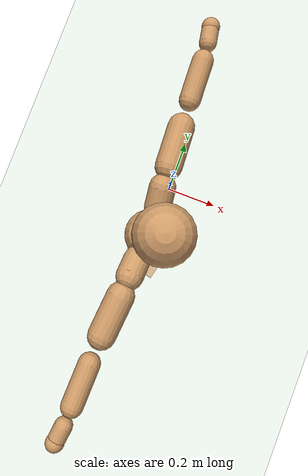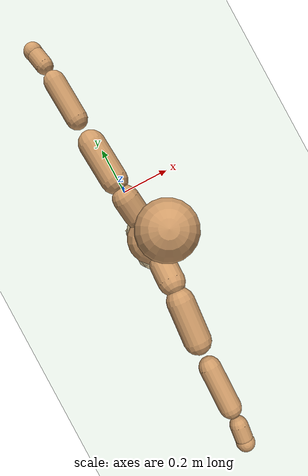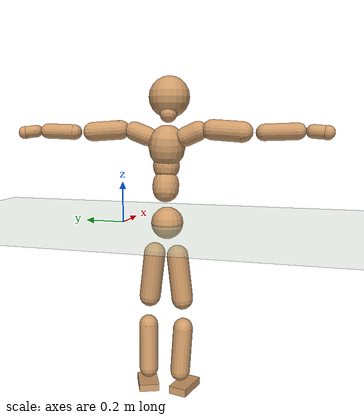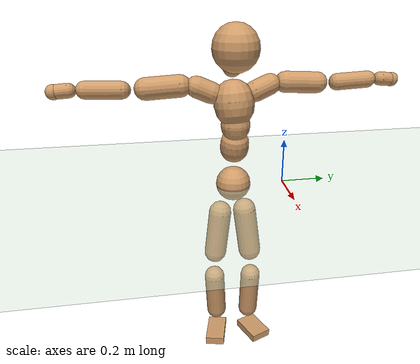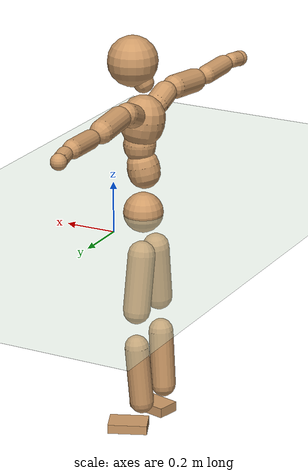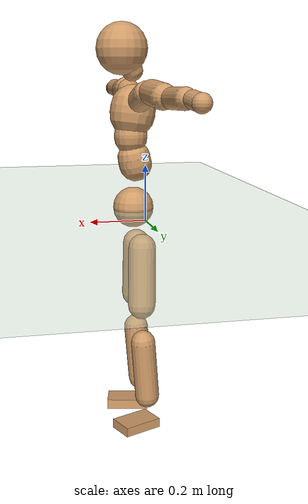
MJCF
<mujoco model="humanoid">
  <compiler coordinate="local" angle="radian"/>
  <default>
    <joint damping="0.0" armature="0.01" stiffness="0.0" limited="true"/>
    <geom conaffinity="1" condim="3" contype="7" margin="0.001" rgba="0.8 0.6 .4 1"/>
  </default>
  <asset>
    <texture type="skybox" builtin="gradient" rgb1=".4 .5 .6" rgb2="0 0 0" width="100" height="100"/>
    <texture builtin="flat" height="1278" mark="cross" markrgb="1 1 1" name="texgeom" random="0.01" rgb1="0.8 0.6 0.4" rgb2="0.8 0.6 0.4" type="cube" width="127"/>
    <texture builtin="checker" height="100" name="texplane" rgb1="0 0 0" rgb2="0.8 0.8 0.8" type="2d" width="100"/>
    <material name="MatPlane" reflectance="0.5" shininess="1" specular="1" texrepeat="60 60" texture="texplane"/>
    <material name="geom" texture="texgeom" texuniform="true"/>
  </asset>
  <worldbody>
    <light cutoff="100" diffuse="1 1 1" dir="-0 0 -1.3" directional="true" exponent="1" pos="0 0 1.3" specular=".1 .1 .1"/>
    <geom conaffinity="1" condim="3" name="floor" pos="0 0 0" rgba="0.8 0.9 0.8 1" size="100 100 .2" type="plane" material="MatPlane"/>
    <body name="Pelvis" pos="-0.0021 -0.2314 0.006">
      <freejoint name="Pelvis"/>
      <geom type="sphere" contype="1" conaffinity="1" density="500" size="0.0788" pos="0.0000 0.0000 0.0000" name="Pelvis"/>
      <body name="L_Hip" pos="-0.0255 0.0485 -0.0764">
        <joint name="L_Hip_x" type="hinge" pos="0 0 0" axis="1 0 0" stiffness="800" damping="80" armature="0.02" range="-180.0000 180.0000"/>
        <joint name="L_Hip_y" type="hinge" pos="0 0 0" axis="0 1 0" stiffness="800" damping="80" armature="0.02" range="-180.0000 180.0000"/>
        <joint name="L_Hip_z" type="hinge" pos="0 0 0" axis="0 0 1" stiffness="800" damping="80" armature="0.02" range="-180.0000 180.0000"/>
        <geom type="capsule" contype="1" conaffinity="1" density="500" fromto="0.0024 0.0093 -0.0752 0.0096 0.0371 -0.3007" size="0.0534" name="L_Hip"/>
        <body name="L_Knee" pos="0.0119 0.0464 -0.3758">
          <joint name="L_Knee_x" type="hinge" pos="0 0 0" axis="1 0 0" stiffness="800" damping="80" armature="0.02" range="-180.0000 180.0000"/>
          <joint name="L_Knee_y" type="hinge" pos="0 0 0" axis="0 1 0" stiffness="800" damping="80" armature="0.02" range="-180.0000 180.0000"/>
          <joint name="L_Knee_z" type="hinge" pos="0 0 0" axis="0 0 1" stiffness="800" damping="80" armature="0.02" range="-180.0000 180.0000"/>
          <geom type="capsule" contype="1" conaffinity="1" density="500" fromto="-0.0061 -0.0020 -0.0768 -0.0246 -0.0082 -0.3072" size="0.0479" name="L_Knee"/>
          <body name="L_Ankle" pos="-0.0307 -0.0102 -0.384">
            <joint name="L_Ankle_x" type="hinge" pos="0 0 0" axis="1 0 0" stiffness="800" damping="80" armature="0.02" range="-180.0000 180.0000"/>
            <joint name="L_Ankle_y" type="hinge" pos="0 0 0" axis="0 1 0" stiffness="800" damping="80" armature="0.02" range="-180.0000 180.0000"/>
            <joint name="L_Ankle_z" type="hinge" pos="0 0 0" axis="0 0 1" stiffness="800" damping="80" armature="0.02" range="-180.0000 180.0000"/>
            <geom type="box" contype="1" conaffinity="1" density="500" pos="0.0552 0.0234 -0.0281" size="0.0777 0.0511 0.0182" quat="0.9800 0.0000 0.0000 0.1988" name="L_Ankle"/>
            <body name="L_Toe" pos="0.1104 0.0467 -0.0563">
              <joint name="L_Toe_x" type="hinge" pos="0 0 0" axis="1 0 0" stiffness="500" damping="50" armature="0.02" range="-180.0000 180.0000"/>
              <joint name="L_Toe_y" type="hinge" pos="0 0 0" axis="0 1 0" stiffness="500" damping="50" armature="0.02" range="-180.0000 180.0000"/>
              <joint name="L_Toe_z" type="hinge" pos="0 0 0" axis="0 0 1" stiffness="500" damping="50" armature="0.02" range="-180.0000 180.0000"/>
              <geom type="box" contype="1" conaffinity="1" density="500" pos="0.0000 0.0000 0.0303" size="0.001 0.0025 0.001" quat="0.9792 0.0000 0.0000 0.2031" name="L_Toe"/>
            </body>
          </body>
        </body>
      </body>
      <body name="R_Hip" pos="-0.0237 -0.0501 -0.0835">
        <joint name="R_Hip_x" type="hinge" pos="0 0 0" axis="1 0 0" stiffness="800" damping="80" armature="0.02" range="-180.0000 180.0000"/>
        <joint name="R_Hip_y" type="hinge" pos="0 0 0" axis="0 1 0" stiffness="800" damping="80" armature="0.02" range="-180.0000 180.0000"/>
        <joint name="R_Hip_z" type="hinge" pos="0 0 0" axis="0 0 1" stiffness="800" damping="80" armature="0.02" range="-180.0000 180.0000"/>
        <geom type="capsule" contype="1" conaffinity="1" density="500" fromto="0.0001 -0.0089 -0.0733 0.0003 -0.0356 -0.2934" size="0.0526" name="R_Hip"/>
        <body name="R_Knee" pos="0.0004 -0.0445 -0.3667">
          <joint name="R_Knee_x" type="hinge" pos="0 0 0" axis="1 0 0" stiffness="800" damping="80" armature="0.02" range="-180.0000 180.0000"/>
          <joint name="R_Knee_y" type="hinge" pos="0 0 0" axis="0 1 0" stiffness="800" damping="80" armature="0.02" range="-180.0000 180.0000"/>
          <joint name="R_Knee_z" type="hinge" pos="0 0 0" axis="0 0 1" stiffness="800" damping="80" armature="0.02" range="-180.0000 180.0000"/>
          <geom type="capsule" contype="1" conaffinity="1" density="500" fromto="-0.0057 0.0032 -0.0755 -0.0227 0.0128 -0.3018" size="0.0488" name="R_Knee"/>
          <body name="R_Ankle" pos="-0.0284 0.016 -0.3773">
            <joint name="R_Ankle_x" type="hinge" pos="0 0 0" axis="1 0 0" stiffness="800" damping="80" armature="0.02" range="-180.0000 180.0000"/>
            <joint name="R_Ankle_y" type="hinge" pos="0 0 0" axis="0 1 0" stiffness="800" damping="80" armature="0.02" range="-180.0000 180.0000"/>
            <joint name="R_Ankle_z" type="hinge" pos="0 0 0" axis="0 0 1" stiffness="800" damping="80" armature="0.02" range="-180.0000 180.0000"/>
            <geom type="box" contype="1" conaffinity="1" density="500" pos="0.0596 -0.0139 -0.0294" size="0.0834 0.0463 0.0198" quat="0.9934 0.0000 0.0000 -0.1148" name="R_Ankle"/>
            <body name="R_Toe" pos="0.1191 -0.0279 -0.0589">
              <joint name="R_Toe_x" type="hinge" pos="0 0 0" axis="1 0 0" stiffness="500" damping="50" armature="0.02" range="-180.0000 180.0000"/>
              <joint name="R_Toe_y" type="hinge" pos="0 0 0" axis="0 1 0" stiffness="500" damping="50" armature="0.02" range="-180.0000 180.0000"/>
              <joint name="R_Toe_z" type="hinge" pos="0 0 0" axis="0 0 1" stiffness="500" damping="50" armature="0.02" range="-180.0000 180.0000"/>
              <geom type="box" contype="1" conaffinity="1" density="500" pos="0.0000 0.0000 0.0317" size="0.0009 0.0023 0.0011" quat="0.9945 0.0000 0.0000 -0.1051" name="R_Toe"/>
            </body>
          </body>
        </body>
      </body>
      <body name="Torso" pos="-0.0205 0.0036 0.1111">
        <joint name="Torso_x" type="hinge" pos="0 0 0" axis="1 0 0" stiffness="1000" damping="100" armature="0.02" range="-180.0000 180.0000"/>
        <joint name="Torso_y" type="hinge" pos="0 0 0" axis="0 1 0" stiffness="1000" damping="100" armature="0.02" range="-180.0000 180.0000"/>
        <joint name="Torso_z" type="hinge" pos="0 0 0" axis="0 0 1" stiffness="1000" damping="100" armature="0.02" range="-180.0000 180.0000"/>
        <geom type="capsule" contype="1" conaffinity="1" density="500" fromto="0.0187 0.0028 0.0832 0.0125 0.0019 0.0554" size="0.0634" name="Torso"/>
        <body name="Spine" pos="0.0311 0.0047 0.1386">
          <joint name="Spine_x" type="hinge" pos="0 0 0" axis="1 0 0" stiffness="1000" damping="100" armature="0.02" range="-180.0000 180.0000"/>
          <joint name="Spine_y" type="hinge" pos="0 0 0" axis="0 1 0" stiffness="1000" damping="100" armature="0.02" range="-180.0000 180.0000"/>
          <joint name="Spine_z" type="hinge" pos="0 0 0" axis="0 0 1" stiffness="1000" damping="100" armature="0.02" range="-180.0000 180.0000"/>
          <geom type="capsule" contype="1" conaffinity="1" density="500" fromto="0.0003 -0.0008 0.0334 0.0002 -0.0005 0.0223" size="0.0637" name="Spine"/>
          <body name="Chest" pos="0.0006 -0.0013 0.0557">
            <joint name="Chest_x" type="hinge" pos="0 0 0" axis="1 0 0" stiffness="1000" damping="100" armature="0.02" range="-180.0000 180.0000"/>
            <joint name="Chest_y" type="hinge" pos="0 0 0" axis="0 1 0" stiffness="1000" damping="100" armature="0.02" range="-180.0000 180.0000"/>
            <joint name="Chest_z" type="hinge" pos="0 0 0" axis="0 0 1" stiffness="1000" damping="100" armature="0.02" range="-180.0000 180.0000"/>
            <geom type="capsule" contype="1" conaffinity="1" density="500" fromto="-0.0115 -0.0055 0.0801 -0.0077 -0.0037 0.0534" size="0.0871" name="Chest"/>
            <body name="Neck" pos="-0.0204 -0.0139 0.1968">
              <joint name="Neck_x" type="hinge" pos="0 0 0" axis="1 0 0" stiffness="500" damping="50" armature="0.02" range="-180.0000 180.0000"/>
              <joint name="Neck_y" type="hinge" pos="0 0 0" axis="0 1 0" stiffness="500" damping="50" armature="0.02" range="-180.0000 180.0000"/>
              <joint name="Neck_z" type="hinge" pos="0 0 0" axis="0 0 1" stiffness="500" damping="50" armature="0.02" range="-180.0000 180.0000"/>
              <geom type="capsule" contype="1" conaffinity="1" density="500" fromto="0.0105 0.0019 0.0201 0.0420 0.0074 0.0804" size="0.041" name="Neck"/>
              <body name="Head" pos="0.0524 0.0093 0.1005">
                <joint name="Head_x" type="hinge" pos="0 0 0" axis="1 0 0" stiffness="500" damping="50" armature="0.02" range="-180.0000 180.0000"/>
                <joint name="Head_y" type="hinge" pos="0 0 0" axis="0 1 0" stiffness="500" damping="50" armature="0.02" range="-180.0000 180.0000"/>
                <joint name="Head_z" type="hinge" pos="0 0 0" axis="0 0 1" stiffness="500" damping="50" armature="0.02" range="-180.0000 180.0000"/>
                <geom type="sphere" contype="1" conaffinity="1" density="500" size="0.0985" pos="0.0000 0.0000 0.0000" name="Head"/>
              </body>
            </body>
            <body name="L_Thorax" pos="-0.0164 0.064 0.1022">
              <joint name="L_Thorax_x" type="hinge" pos="0 0 0" axis="1 0 0" stiffness="500" damping="50" armature="0.02" range="-180.0000 180.0000"/>
              <joint name="L_Thorax_y" type="hinge" pos="0 0 0" axis="0 1 0" stiffness="500" damping="50" armature="0.02" range="-180.0000 180.0000"/>
              <joint name="L_Thorax_z" type="hinge" pos="0 0 0" axis="0 0 1" stiffness="500" damping="50" armature="0.02" range="-180.0000 180.0000"/>
              <geom type="capsule" contype="1" conaffinity="1" density="500" fromto="-0.0026 0.0222 0.0088 -0.0103 0.0887 0.0354" size="0.0454" name="L_Thorax"/>
              <body name="L_Shoulder" pos="-0.0129 0.1109 0.0442">
                <joint name="L_Shoulder_x" type="hinge" pos="0 0 0" axis="1 0 0" stiffness="500" damping="50" armature="0.02" range="-720.0000 720.0000"/>
                <joint name="L_Shoulder_y" type="hinge" pos="0 0 0" axis="0 1 0" stiffness="500" damping="50" armature="0.02" range="-720.0000 720.0000"/>
                <joint name="L_Shoulder_z" type="hinge" pos="0 0 0" axis="0 0 1" stiffness="500" damping="50" armature="0.02" range="-720.0000 720.0000"/>
                <geom type="capsule" contype="1" conaffinity="1" density="500" fromto="-0.0026 0.0476 -0.0030 -0.0105 0.1903 -0.0121" size="0.0459" name="L_Shoulder"/>
                <body name="L_Elbow" pos="-0.0132 0.2379 -0.0152">
                  <joint name="L_Elbow_x" type="hinge" pos="0 0 0" axis="1 0 0" stiffness="500" damping="50" armature="0.02" range="-720.0000 720.0000"/>
                  <joint name="L_Elbow_y" type="hinge" pos="0 0 0" axis="0 1 0" stiffness="500" damping="50" armature="0.02" range="-720.0000 720.0000"/>
                  <joint name="L_Elbow_z" type="hinge" pos="0 0 0" axis="0 0 1" stiffness="500" damping="50" armature="0.02" range="-720.0000 720.0000"/>
                  <geom type="capsule" contype="1" conaffinity="1" density="500" fromto="-0.0021 0.0471 0.0017 -0.0083 0.1883 0.0068" size="0.0366" name="L_Elbow"/>
                  <body name="L_Wrist" pos="-0.0104 0.2354 0.0085">
                    <joint name="L_Wrist_x" type="hinge" pos="0 0 0" axis="1 0 0" stiffness="300" damping="30" armature="0.02" range="-180.0000 180.0000"/>
                    <joint name="L_Wrist_y" type="hinge" pos="0 0 0" axis="0 1 0" stiffness="300" damping="30" armature="0.02" range="-180.0000 180.0000"/>
                    <joint name="L_Wrist_z" type="hinge" pos="0 0 0" axis="0 0 1" stiffness="300" damping="30" armature="0.02" range="-180.0000 180.0000"/>
                    <geom type="capsule" contype="1" conaffinity="1" density="500" fromto="-0.0027 0.0152 -0.0019 -0.0108 0.0607 -0.0075" size="0.0298" name="L_Wrist"/>
                    <body name="L_Hand" pos="-0.0135 0.0758 -0.0094">
                      <joint name="L_Hand_x" type="hinge" pos="0 0 0" axis="1 0 0" stiffness="300" damping="30" armature="0.02" range="-180.0000 180.0000"/>
                      <joint name="L_Hand_y" type="hinge" pos="0 0 0" axis="0 1 0" stiffness="300" damping="30" armature="0.02" range="-180.0000 180.0000"/>
                      <joint name="L_Hand_z" type="hinge" pos="0 0 0" axis="0 0 1" stiffness="300" damping="30" armature="0.02" range="-180.0000 180.0000"/>
                      <geom type="sphere" contype="1" conaffinity="1" density="500" size="0.0312" pos="0.0000 0.0000 0.0000" name="L_Hand"/>
                    </body>
                  </body>
                </body>
              </body>
            </body>
            <body name="R_Thorax" pos="-0.0208 -0.0775 0.1017">
              <joint name="R_Thorax_x" type="hinge" pos="0 0 0" axis="1 0 0" stiffness="500" damping="50" armature="0.02" range="-180.0000 180.0000"/>
              <joint name="R_Thorax_y" type="hinge" pos="0 0 0" axis="0 1 0" stiffness="500" damping="50" armature="0.02" range="-180.0000 180.0000"/>
              <joint name="R_Thorax_z" type="hinge" pos="0 0 0" axis="0 0 1" stiffness="500" damping="50" armature="0.02" range="-180.0000 180.0000"/>
              <geom type="capsule" contype="1" conaffinity="1" density="500" fromto="-0.0009 -0.0206 0.0090 -0.0034 -0.0824 0.0359" size="0.0461" name="R_Thorax"/>
              <body name="R_Shoulder" pos="-0.0043 -0.103 0.0449">
                <joint name="R_Shoulder_x" type="hinge" pos="0 0 0" axis="1 0 0" stiffness="500" damping="50" armature="0.02" range="-720.0000 720.0000"/>
                <joint name="R_Shoulder_y" type="hinge" pos="0 0 0" axis="0 1 0" stiffness="500" damping="50" armature="0.02" range="-720.0000 720.0000"/>
                <joint name="R_Shoulder_z" type="hinge" pos="0 0 0" axis="0 0 1" stiffness="500" damping="50" armature="0.02" range="-720.0000 720.0000"/>
                <geom type="capsule" contype="1" conaffinity="1" density="500" fromto="-0.0040 -0.0475 -0.0034 -0.0160 -0.1900 -0.0135" size="0.0474" name="R_Shoulder"/>
                <body name="R_Elbow" pos="-0.02 -0.2376 -0.0169">
                  <joint name="R_Elbow_x" type="hinge" pos="0 0 0" axis="1 0 0" stiffness="500" damping="50" armature="0.02" range="-720.0000 720.0000"/>
                  <joint name="R_Elbow_y" type="hinge" pos="0 0 0" axis="0 1 0" stiffness="500" damping="50" armature="0.02" range="-720.0000 720.0000"/>
                  <joint name="R_Elbow_z" type="hinge" pos="0 0 0" axis="0 0 1" stiffness="500" damping="50" armature="0.02" range="-720.0000 720.0000"/>
                  <geom type="capsule" contype="1" conaffinity="1" density="500" fromto="-0.0012 -0.0487 0.0015 -0.0046 -0.1947 0.0061" size="0.0375" name="R_Elbow"/>
                  <body name="R_Wrist" pos="-0.0058 -0.2434 0.0076">
                    <joint name="R_Wrist_x" type="hinge" pos="0 0 0" axis="1 0 0" stiffness="300" damping="30" armature="0.02" range="-180.0000 180.0000"/>
                    <joint name="R_Wrist_y" type="hinge" pos="0 0 0" axis="0 1 0" stiffness="300" damping="30" armature="0.02" range="-180.0000 180.0000"/>
                    <joint name="R_Wrist_z" type="hinge" pos="0 0 0" axis="0 0 1" stiffness="300" damping="30" armature="0.02" range="-180.0000 180.0000"/>
                    <geom type="capsule" contype="1" conaffinity="1" density="500" fromto="-0.0018 -0.0156 -0.0015 -0.0072 -0.0623 -0.0058" size="0.0303" name="R_Wrist"/>
                    <body name="R_Hand" pos="-0.009 -0.0778 -0.0073">
                      <joint name="R_Hand_x" type="hinge" pos="0 0 0" axis="1 0 0" stiffness="300" damping="30" armature="0.02" range="-180.0000 180.0000"/>
                      <joint name="R_Hand_y" type="hinge" pos="0 0 0" axis="0 1 0" stiffness="300" damping="30" armature="0.02" range="-180.0000 180.0000"/>
                      <joint name="R_Hand_z" type="hinge" pos="0 0 0" axis="0 0 1" stiffness="300" damping="30" armature="0.02" range="-180.0000 180.0000"/>
                      <geom type="sphere" contype="1" conaffinity="1" density="500" size="0.0317" pos="0.0000 0.0000 0.0000" name="R_Hand"/>
                    </body>
                  </body>
                </body>
              </body>
            </body>
          </body>
        </body>
      </body>
    </body>
  </worldbody>
  <actuator>
    <motor name="L_Hip_x" joint="L_Hip_x" gear="500"/>
    <motor name="L_Hip_y" joint="L_Hip_y" gear="500"/>
    <motor name="L_Hip_z" joint="L_Hip_z" gear="500"/>
    <motor name="L_Knee_x" joint="L_Knee_x" gear="500"/>
    <motor name="L_Knee_y" joint="L_Knee_y" gear="500"/>
    <motor name="L_Knee_z" joint="L_Knee_z" gear="500"/>
    <motor name="L_Ankle_x" joint="L_Ankle_x" gear="500"/>
    <motor name="L_Ankle_y" joint="L_Ankle_y" gear="500"/>
    <motor name="L_Ankle_z" joint="L_Ankle_z" gear="500"/>
    <motor name="L_Toe_x" joint="L_Toe_x" gear="500"/>
    <motor name="L_Toe_y" joint="L_Toe_y" gear="500"/>
    <motor name="L_Toe_z" joint="L_Toe_z" gear="500"/>
    <motor name="R_Hip_x" joint="R_Hip_x" gear="500"/>
    <motor name="R_Hip_y" joint="R_Hip_y" gear="500"/>
    <motor name="R_Hip_z" joint="R_Hip_z" gear="500"/>
    <motor name="R_Knee_x" joint="R_Knee_x" gear="500"/>
    <motor name="R_Knee_y" joint="R_Knee_y" gear="500"/>
    <motor name="R_Knee_z" joint="R_Knee_z" gear="500"/>
    <motor name="R_Ankle_x" joint="R_Ankle_x" gear="500"/>
    <motor name="R_Ankle_y" joint="R_Ankle_y" gear="500"/>
    <motor name="R_Ankle_z" joint="R_Ankle_z" gear="500"/>
    <motor name="R_Toe_x" joint="R_Toe_x" gear="500"/>
    <motor name="R_Toe_y" joint="R_Toe_y" gear="500"/>
    <motor name="R_Toe_z" joint="R_Toe_z" gear="500"/>
    <motor name="Torso_x" joint="Torso_x" gear="500"/>
    <motor name="Torso_y" joint="Torso_y" gear="500"/>
    <motor name="Torso_z" joint="Torso_z" gear="500"/>
    <motor name="Spine_x" joint="Spine_x" gear="500"/>
    <motor name="Spine_y" joint="Spine_y" gear="500"/>
    <motor name="Spine_z" joint="Spine_z" gear="500"/>
    <motor name="Chest_x" joint="Chest_x" gear="500"/>
    <motor name="Chest_y" joint="Chest_y" gear="500"/>
    <motor name="Chest_z" joint="Chest_z" gear="500"/>
    <motor name="Neck_x" joint="Neck_x" gear="500"/>
    <motor name="Neck_y" joint="Neck_y" gear="500"/>
    <motor name="Neck_z" joint="Neck_z" gear="500"/>
    <motor name="Head_x" joint="Head_x" gear="500"/>
    <motor name="Head_y" joint="Head_y" gear="500"/>
    <motor name="Head_z" joint="Head_z" gear="500"/>
    <motor name="L_Thorax_x" joint="L_Thorax_x" gear="500"/>
    <motor name="L_Thorax_y" joint="L_Thorax_y" gear="500"/>
    <motor name="L_Thorax_z" joint="L_Thorax_z" gear="500"/>
    <motor name="L_Shoulder_x" joint="L_Shoulder_x" gear="500"/>
    <motor name="L_Shoulder_y" joint="L_Shoulder_y" gear="500"/>
    <motor name="L_Shoulder_z" joint="L_Shoulder_z" gear="500"/>
    <motor name="L_Elbow_x" joint="L_Elbow_x" gear="500"/>
    <motor name="L_Elbow_y" joint="L_Elbow_y" gear="500"/>
    <motor name="L_Elbow_z" joint="L_Elbow_z" gear="500"/>
    <motor name="L_Wrist_x" joint="L_Wrist_x" gear="500"/>
    <motor name="L_Wrist_y" joint="L_Wrist_y" gear="500"/>
    <motor name="L_Wrist_z" joint="L_Wrist_z" gear="500"/>
    <motor name="L_Hand_x" joint="L_Hand_x" gear="500"/>
    <motor name="L_Hand_y" joint="L_Hand_y" gear="500"/>
    <motor name="L_Hand_z" joint="L_Hand_z" gear="500"/>
    <motor name="R_Thorax_x" joint="R_Thorax_x" gear="500"/>
    <motor name="R_Thorax_y" joint="R_Thorax_y" gear="500"/>
    <motor name="R_Thorax_z" joint="R_Thorax_z" gear="500"/>
    <motor name="R_Shoulder_x" joint="R_Shoulder_x" gear="500"/>
    <motor name="R_Shoulder_y" joint="R_Shoulder_y" gear="500"/>
    <motor name="R_Shoulder_z" joint="R_Shoulder_z" gear="500"/>
    <motor name="R_Elbow_x" joint="R_Elbow_x" gear="500"/>
    <motor name="R_Elbow_y" joint="R_Elbow_y" gear="500"/>
    <motor name="R_Elbow_z" joint="R_Elbow_z" gear="500"/>
    <motor name="R_Wrist_x" joint="R_Wrist_x" gear="500"/>
    <motor name="R_Wrist_y" joint="R_Wrist_y" gear="500"/>
    <motor name="R_Wrist_z" joint="R_Wrist_z" gear="500"/>
    <motor name="R_Hand_x" joint="R_Hand_x" gear="500"/>
    <motor name="R_Hand_y" joint="R_Hand_y" gear="500"/>
    <motor name="R_Hand_z" joint="R_Hand_z" gear="500"/>
  </actuator>
  <contact>
    <exclude body1="Torso" body2="Chest"/>
    <exclude body1="Head" body2="Chest"/>
    <exclude body1="R_Knee" body2="R_Toe"/>
    <exclude body1="R_Knee" body2="L_Ankle"/>
    <exclude body1="R_Knee" body2="L_Toe"/>
    <exclude body1="L_Knee" body2="L_Toe"/>
    <exclude body1="L_Knee" body2="R_Ankle"/>
    <exclude body1="L_Knee" body2="R_Toe"/>
    <exclude body1="L_Shoulder" body2="Chest"/>
    <exclude body1="R_Shoulder" body2="Chest"/>
  </contact>
  <sensor/>
  <size njmax="700" nconmax="700"/>
</mujoco>
